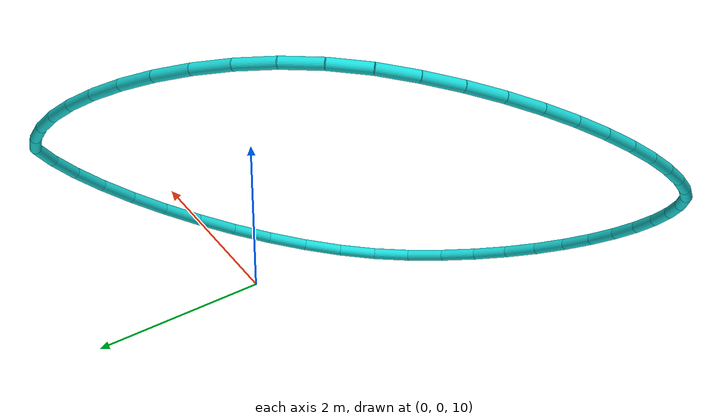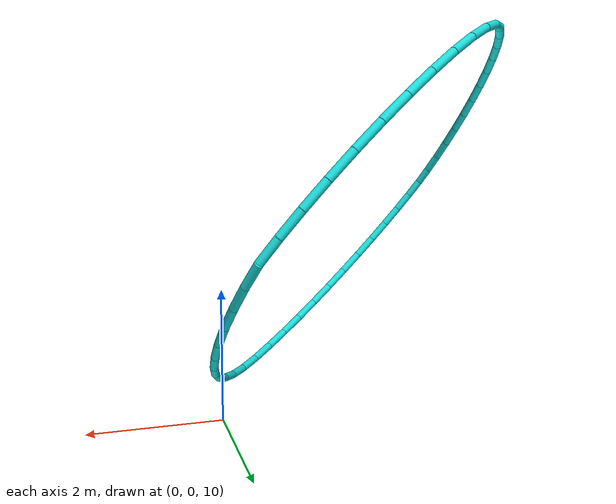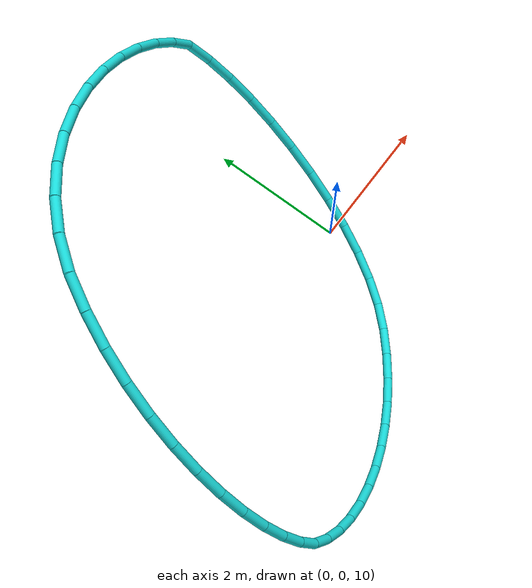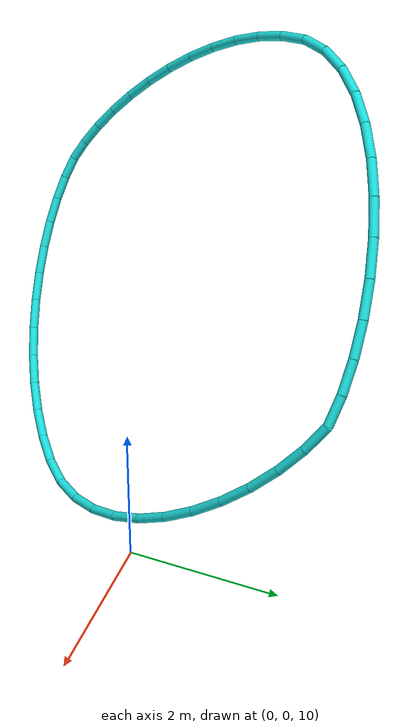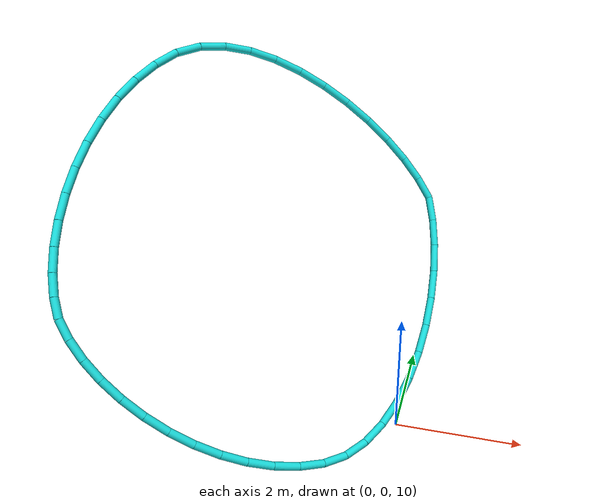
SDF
<sdf version="1.9">
 <world name="wide_scrambled_fast_closed_loop">
  <model name="ground">
   <static>true</static>
   <pose>0 0 -6 0 0 0</pose>
   <link name="link">
    <collision name="c"><geometry><plane><normal>0 0 1</normal><size>80 80</size></plane></geometry></collision>
    <visual name="v">
     <geometry><plane><normal>0 0 1</normal><size>80 80</size></plane></geometry>
     <material><diffuse>0.08 0.10 0.13 1</diffuse></material>
    </visual>
   </link>
  </model>
  <model name="gate_5_bezier_diamond">
   <static>true</static>
   <pose>-2.000000 0.000000 13.000000 0.000000 0.957660 -0.685730</pose>
   <link name="edge_0">
    <pose>0.148944 -3.331496 0 0 1.570796 0.123602</pose>
    <collision name="collision">
     <geometry><cylinder><radius>0.06</radius><length>0.300178</length></cylinder></geometry>
    </collision>
    <visual name="visual">
     <geometry><cylinder><radius>0.06</radius><length>0.300178</length></cylinder></geometry>
     <material><diffuse>0.10 0.85 0.85 1</diffuse><emissive>0.10 0.85 0.85 1</emissive></material>
    </visual>
   </link>
   <link name="edge_1">
    <pose>0.455078 -3.270964 0 0 1.570796 0.261261</pose>
    <collision name="collision">
     <geometry><cylinder><radius>0.06</radius><length>0.325424</length></cylinder></geometry>
    </collision>
    <visual name="visual">
     <geometry><cylinder><radius>0.06</radius><length>0.325424</length></cylinder></geometry>
     <material><diffuse>0.10 0.85 0.85 1</diffuse><emissive>0.10 0.85 0.85 1</emissive></material>
    </visual>
   </link>
   <link name="edge_2">
    <pose>0.774494 -3.164858 0 0 1.570796 0.376178</pose>
    <collision name="collision">
     <geometry><cylinder><radius>0.06</radius><length>0.348843</length></cylinder></geometry>
    </collision>
    <visual name="visual">
     <geometry><cylinder><radius>0.06</radius><length>0.348843</length></cylinder></geometry>
     <material><diffuse>0.10 0.85 0.85 1</diffuse><emissive>0.10 0.85 0.85 1</emissive></material>
    </visual>
   </link>
   <link name="edge_3">
    <pose>1.100767 -3.016131 0 0 1.570796 0.476371</pose>
    <collision name="collision">
     <geometry><cylinder><radius>0.06</radius><length>0.369201</length></cylinder></geometry>
    </collision>
    <visual name="visual">
     <geometry><cylinder><radius>0.06</radius><length>0.369201</length></cylinder></geometry>
     <material><diffuse>0.10 0.85 0.85 1</diffuse><emissive>0.10 0.85 0.85 1</emissive></material>
    </visual>
   </link>
   <link name="edge_4">
    <pose>1.427474 -2.827734 0 0 1.570796 0.567764</pose>
    <collision name="collision">
     <geometry><cylinder><radius>0.06</radius><length>0.385857</length></cylinder></geometry>
    </collision>
    <visual name="visual">
     <geometry><cylinder><radius>0.06</radius><length>0.385857</length></cylinder></geometry>
     <material><diffuse>0.10 0.85 0.85 1</diffuse><emissive>0.10 0.85 0.85 1</emissive></material>
    </visual>
   </link>
   <link name="edge_5">
    <pose>1.748192 -2.602619 0 0 1.570796 0.654841</pose>
    <collision name="collision">
     <geometry><cylinder><radius>0.06</radius><length>0.398562</length></cylinder></geometry>
    </collision>
    <visual name="visual">
     <geometry><cylinder><radius>0.06</radius><length>0.398562</length></cylinder></geometry>
     <material><diffuse>0.10 0.85 0.85 1</diffuse><emissive>0.10 0.85 0.85 1</emissive></material>
    </visual>
   </link>
   <link name="edge_6">
    <pose>2.056496 -2.343736 0 0 1.570796 0.741184</pose>
    <collision name="collision">
     <geometry><cylinder><radius>0.06</radius><length>0.407353</length></cylinder></geometry>
    </collision>
    <visual name="visual">
     <geometry><cylinder><radius>0.06</radius><length>0.407353</length></cylinder></geometry>
     <material><diffuse>0.10 0.85 0.85 1</diffuse><emissive>0.10 0.85 0.85 1</emissive></material>
    </visual>
   </link>
   <link name="edge_7">
    <pose>2.345964 -2.054036 0 0 1.570796 0.829853</pose>
    <collision name="collision">
     <geometry><cylinder><radius>0.06</radius><length>0.412518</length></cylinder></geometry>
    </collision>
    <visual name="visual">
     <geometry><cylinder><radius>0.06</radius><length>0.412518</length></cylinder></geometry>
     <material><diffuse>0.10 0.85 0.85 1</diffuse><emissive>0.10 0.85 0.85 1</emissive></material>
    </visual>
   </link>
   <link name="edge_8">
    <pose>2.610171 -1.736473 0 0 1.570796 0.923624</pose>
    <collision name="collision">
     <geometry><cylinder><radius>0.06</radius><length>0.414592</length></cylinder></geometry>
    </collision>
    <visual name="visual">
     <geometry><cylinder><radius>0.06</radius><length>0.414592</length></cylinder></geometry>
     <material><diffuse>0.10 0.85 0.85 1</diffuse><emissive>0.10 0.85 0.85 1</emissive></material>
    </visual>
   </link>
   <link name="edge_9">
    <pose>2.842694 -1.393996 0 0 1.570796 1.025084</pose>
    <collision name="collision">
     <geometry><cylinder><radius>0.06</radius><length>0.414381</length></cylinder></geometry>
    </collision>
    <visual name="visual">
     <geometry><cylinder><radius>0.06</radius><length>0.414381</length></cylinder></geometry>
     <material><diffuse>0.10 0.85 0.85 1</diffuse><emissive>0.10 0.85 0.85 1</emissive></material>
    </visual>
   </link>
   <link name="edge_10">
    <pose>3.037109 -1.029557 0 0 1.570796 1.136573</pose>
    <collision name="collision">
     <geometry><cylinder><radius>0.06</radius><length>0.413010</length></cylinder></geometry>
    </collision>
    <visual name="visual">
     <geometry><cylinder><radius>0.06</radius><length>0.413010</length></cylinder></geometry>
     <material><diffuse>0.10 0.85 0.85 1</diffuse><emissive>0.10 0.85 0.85 1</emissive></material>
    </visual>
   </link>
   <link name="edge_11">
    <pose>3.186994 -0.646108 0 0 1.570796 1.259929</pose>
    <collision name="collision">
     <geometry><cylinder><radius>0.06</radius><length>0.411962</length></cylinder></geometry>
    </collision>
    <visual name="visual">
     <geometry><cylinder><radius>0.06</radius><length>0.411962</length></cylinder></geometry>
     <material><diffuse>0.10 0.85 0.85 1</diffuse><emissive>0.10 0.85 0.85 1</emissive></material>
    </visual>
   </link>
   <link name="edge_12">
    <pose>3.274841 -0.253675 0 0 1.570796 1.444936</pose>
    <collision name="collision">
     <geometry><cylinder><radius>0.06</radius><length>0.395781</length></cylinder></geometry>
    </collision>
    <visual name="visual">
     <geometry><cylinder><radius>0.06</radius><length>0.395781</length></cylinder></geometry>
     <material><diffuse>0.10 0.85 0.85 1</diffuse><emissive>0.10 0.85 0.85 1</emissive></material>
    </visual>
   </link>
   <link name="edge_13">
    <pose>3.277734 0.141927 0 0 1.570796 1.680489</pose>
    <collision name="collision">
     <geometry><cylinder><radius>0.06</radius><length>0.400963</length></cylinder></geometry>
    </collision>
    <visual name="visual">
     <geometry><cylinder><radius>0.06</radius><length>0.400963</length></cylinder></geometry>
     <material><diffuse>0.10 0.85 0.85 1</diffuse><emissive>0.10 0.85 0.85 1</emissive></material>
    </visual>
   </link>
   <link name="edge_14">
    <pose>3.192347 0.540133 0 0 1.570796 1.879509</pose>
    <collision name="collision">
     <geometry><cylinder><radius>0.06</radius><length>0.417601</length></cylinder></geometry>
    </collision>
    <visual name="visual">
     <geometry><cylinder><radius>0.06</radius><length>0.417601</length></cylinder></geometry>
     <material><diffuse>0.10 0.85 0.85 1</diffuse><emissive>0.10 0.85 0.85 1</emissive></material>
    </visual>
   </link>
   <link name="edge_15">
    <pose>3.029268 0.934346 0 0 1.570796 2.042589</pose>
    <collision name="collision">
     <geometry><cylinder><radius>0.06</radius><length>0.438468</length></cylinder></geometry>
    </collision>
    <visual name="visual">
     <geometry><cylinder><radius>0.06</radius><length>0.438468</length></cylinder></geometry>
     <material><diffuse>0.10 0.85 0.85 1</diffuse><emissive>0.10 0.85 0.85 1</emissive></material>
    </visual>
   </link>
   <link name="edge_16">
    <pose>2.799089 1.317969 0 0 1.570796 2.176888</pose>
    <collision name="collision">
     <geometry><cylinder><radius>0.06</radius><length>0.458313</length></cylinder></geometry>
    </collision>
    <visual name="visual">
     <geometry><cylinder><radius>0.06</radius><length>0.458313</length></cylinder></geometry>
     <material><diffuse>0.10 0.85 0.85 1</diffuse><emissive>0.10 0.85 0.85 1</emissive></material>
    </visual>
   </link>
   <link name="edge_17">
    <pose>2.512399 1.684404 0 0 1.570796 2.290626</pose>
    <collision name="collision">
     <geometry><cylinder><radius>0.06</radius><length>0.473711</length></cylinder></geometry>
    </collision>
    <visual name="visual">
     <geometry><cylinder><radius>0.06</radius><length>0.473711</length></cylinder></geometry>
     <material><diffuse>0.10 0.85 0.85 1</diffuse><emissive>0.10 0.85 0.85 1</emissive></material>
    </visual>
   </link>
   <link name="edge_18">
    <pose>2.179789 2.027054 0 0 1.570796 2.391096</pose>
    <collision name="collision">
     <geometry><cylinder><radius>0.06</radius><length>0.482563</length></cylinder></geometry>
    </collision>
    <visual name="visual">
     <geometry><cylinder><radius>0.06</radius><length>0.482563</length></cylinder></geometry>
     <material><diffuse>0.10 0.85 0.85 1</diffuse><emissive>0.10 0.85 0.85 1</emissive></material>
    </visual>
   </link>
   <link name="edge_19">
    <pose>1.811849 2.339323 0 0 1.570796 2.484511</pose>
    <collision name="collision">
     <geometry><cylinder><radius>0.06</radius><length>0.483667</length></cylinder></geometry>
    </collision>
    <visual name="visual">
     <geometry><cylinder><radius>0.06</radius><length>0.483667</length></cylinder></geometry>
     <material><diffuse>0.10 0.85 0.85 1</diffuse><emissive>0.10 0.85 0.85 1</emissive></material>
    </visual>
   </link>
   <link name="edge_20">
    <pose>1.419170 2.614612 0 0 1.570796 2.576498</pose>
    <collision name="collision">
     <geometry><cylinder><radius>0.06</radius><length>0.476475</length></cylinder></geometry>
    </collision>
    <visual name="visual">
     <geometry><cylinder><radius>0.06</radius><length>0.476475</length></cylinder></geometry>
     <material><diffuse>0.10 0.85 0.85 1</diffuse><emissive>0.10 0.85 0.85 1</emissive></material>
    </visual>
   </link>
   <link name="edge_21">
    <pose>1.012341 2.846325 0 0 1.570796 2.672808</pose>
    <collision name="collision">
     <geometry><cylinder><radius>0.06</radius><length>0.460988</length></cylinder></geometry>
    </collision>
    <visual name="visual">
     <geometry><cylinder><radius>0.06</radius><length>0.460988</length></cylinder></geometry>
     <material><diffuse>0.10 0.85 0.85 1</diffuse><emissive>0.10 0.85 0.85 1</emissive></material>
    </visual>
   </link>
   <link name="edge_22">
    <pose>0.601953 3.027865 0 0 1.570796 2.780184</pose>
    <collision name="collision">
     <geometry><cylinder><radius>0.06</radius><length>0.437802</length></cylinder></geometry>
    </collision>
    <visual name="visual">
     <geometry><cylinder><radius>0.06</radius><length>0.437802</length></cylinder></geometry>
     <material><diffuse>0.10 0.85 0.85 1</diffuse><emissive>0.10 0.85 0.85 1</emissive></material>
    </visual>
   </link>
   <link name="edge_23">
    <pose>0.198597 3.152633 0 0 1.570796 2.907459</pose>
    <collision name="collision">
     <geometry><cylinder><radius>0.06</radius><length>0.408334</length></cylinder></geometry>
    </collision>
    <visual name="visual">
     <geometry><cylinder><radius>0.06</radius><length>0.408334</length></cylinder></geometry>
     <material><diffuse>0.10 0.85 0.85 1</diffuse><emissive>0.10 0.85 0.85 1</emissive></material>
    </visual>
   </link>
   <link name="edge_24">
    <pose>-0.187616 3.158840 0 0 1.570796 -2.925628</pose>
    <collision name="collision">
     <geometry><cylinder><radius>0.06</radius><length>0.384155</length></cylinder></geometry>
    </collision>
    <visual name="visual">
     <geometry><cylinder><radius>0.06</radius><length>0.384155</length></cylinder></geometry>
     <material><diffuse>0.10 0.85 0.85 1</diffuse><emissive>0.10 0.85 0.85 1</emissive></material>
    </visual>
   </link>
   <link name="edge_25">
    <pose>-0.571875 3.046224 0 0 1.570796 -2.793052</pose>
    <collision name="collision">
     <geometry><cylinder><radius>0.06</radius><length>0.418447</length></cylinder></geometry>
    </collision>
    <visual name="visual">
     <geometry><cylinder><radius>0.06</radius><length>0.418447</length></cylinder></geometry>
     <material><diffuse>0.10 0.85 0.85 1</diffuse><emissive>0.10 0.85 0.85 1</emissive></material>
    </visual>
   </link>
   <link name="edge_26">
    <pose>-0.968634 2.876056 0 0 1.570796 -2.683338</pose>
    <collision name="collision">
     <geometry><cylinder><radius>0.06</radius><length>0.446275</length></cylinder></geometry>
    </collision>
    <visual name="visual">
     <geometry><cylinder><radius>0.06</radius><length>0.446275</length></cylinder></geometry>
     <material><diffuse>0.10 0.85 0.85 1</diffuse><emissive>0.10 0.85 0.85 1</emissive></material>
    </visual>
   </link>
   <link name="edge_27">
    <pose>-1.366782 2.654413 0 0 1.570796 -2.586046</pose>
    <collision name="collision">
     <geometry><cylinder><radius>0.06</radius><length>0.466171</length></cylinder></geometry>
    </collision>
    <visual name="visual">
     <geometry><cylinder><radius>0.06</radius><length>0.466171</length></cylinder></geometry>
     <material><diffuse>0.10 0.85 0.85 1</diffuse><emissive>0.10 0.85 0.85 1</emissive></material>
    </visual>
   </link>
   <link name="edge_28">
    <pose>-1.755208 2.387370 0 0 1.570796 -2.493681</pose>
    <collision name="collision">
     <geometry><cylinder><radius>0.06</radius><length>0.477568</length></cylinder></geometry>
    </collision>
    <visual name="visual">
     <geometry><cylinder><radius>0.06</radius><length>0.477568</length></cylinder></geometry>
     <material><diffuse>0.10 0.85 0.85 1</diffuse><emissive>0.10 0.85 0.85 1</emissive></material>
    </visual>
   </link>
   <link name="edge_29">
    <pose>-2.122801 2.081004 0 0 1.570796 -2.400193</pose>
    <collision name="collision">
     <geometry><cylinder><radius>0.06</radius><length>0.480524</length></cylinder></geometry>
    </collision>
    <visual name="visual">
     <geometry><cylinder><radius>0.06</radius><length>0.480524</length></cylinder></geometry>
     <material><diffuse>0.10 0.85 0.85 1</diffuse><emissive>0.10 0.85 0.85 1</emissive></material>
    </visual>
   </link>
   <link name="edge_30">
    <pose>-2.458449 1.741392 0 0 1.570796 -2.299944</pose>
    <collision name="collision">
     <geometry><cylinder><radius>0.06</radius><length>0.475656</length></cylinder></geometry>
    </collision>
    <visual name="visual">
     <geometry><cylinder><radius>0.06</radius><length>0.475656</length></cylinder></geometry>
     <material><diffuse>0.10 0.85 0.85 1</diffuse><emissive>0.10 0.85 0.85 1</emissive></material>
    </visual>
   </link>
   <link name="edge_31">
    <pose>-2.751042 1.374609 0 0 1.570796 -2.186981</pose>
    <collision name="collision">
     <geometry><cylinder><radius>0.06</radius><length>0.464224</length></cylinder></geometry>
    </collision>
    <visual name="visual">
     <geometry><cylinder><radius>0.06</radius><length>0.464224</length></cylinder></geometry>
     <material><diffuse>0.10 0.85 0.85 1</diffuse><emissive>0.10 0.85 0.85 1</emissive></material>
    </visual>
   </link>
   <link name="edge_32">
    <pose>-2.989468 0.986733 0 0 1.570796 -2.054619</pose>
    <collision name="collision">
     <geometry><cylinder><radius>0.06</radius><length>0.448366</length></cylinder></geometry>
    </collision>
    <visual name="visual">
     <geometry><cylinder><radius>0.06</radius><length>0.448366</length></cylinder></geometry>
     <material><diffuse>0.10 0.85 0.85 1</diffuse><emissive>0.10 0.85 0.85 1</emissive></material>
    </visual>
   </link>
   <link name="edge_33">
    <pose>-3.162616 0.583840 0 0 1.570796 -1.895707</pose>
    <collision name="collision">
     <geometry><cylinder><radius>0.06</radius><length>0.431457</length></cylinder></geometry>
    </collision>
    <visual name="visual">
     <geometry><cylinder><radius>0.06</radius><length>0.431457</length></cylinder></geometry>
     <material><diffuse>0.10 0.85 0.85 1</diffuse><emissive>0.10 0.85 0.85 1</emissive></material>
    </visual>
   </link>
   <link name="edge_34">
    <pose>-3.259375 0.172005 0 0 1.570796 -1.704490</pose>
    <collision name="collision">
     <geometry><cylinder><radius>0.06</radius><length>0.418521</length></cylinder></geometry>
    </collision>
    <visual name="visual">
     <geometry><cylinder><radius>0.06</radius><length>0.418521</length></cylinder></geometry>
     <material><diffuse>0.10 0.85 0.85 1</diffuse><emissive>0.10 0.85 0.85 1</emissive></material>
    </visual>
   </link>
   <link name="edge_35">
    <pose>-3.268634 -0.242694 0 0 1.570796 -1.481150</pose>
    <collision name="collision">
     <geometry><cylinder><radius>0.06</radius><length>0.416284</length></cylinder></geometry>
    </collision>
    <visual name="visual">
     <geometry><cylinder><radius>0.06</radius><length>0.416284</length></cylinder></geometry>
     <material><diffuse>0.10 0.85 0.85 1</diffuse><emissive>0.10 0.85 0.85 1</emissive></material>
    </visual>
   </link>
   <link name="edge_36">
    <pose>-3.186516 -0.646108 0 0 1.570796 -1.257724</pose>
    <collision name="collision">
     <geometry><cylinder><radius>0.06</radius><length>0.412255</length></cylinder></geometry>
    </collision>
    <visual name="visual">
     <geometry><cylinder><radius>0.06</radius><length>0.412255</length></cylinder></geometry>
     <material><diffuse>0.10 0.85 0.85 1</diffuse><emissive>0.10 0.85 0.85 1</emissive></material>
    </visual>
   </link>
   <link name="edge_37">
    <pose>-3.034896 -1.029557 0 0 1.570796 -1.131058</pose>
    <collision name="collision">
     <geometry><cylinder><radius>0.06</radius><length>0.414076</length></cylinder></geometry>
    </collision>
    <visual name="visual">
     <geometry><cylinder><radius>0.06</radius><length>0.414076</length></cylinder></geometry>
     <material><diffuse>0.10 0.85 0.85 1</diffuse><emissive>0.10 0.85 0.85 1</emissive></material>
    </visual>
   </link>
   <link name="edge_38">
    <pose>-2.837442 -1.393996 0 0 1.570796 -1.017775</pose>
    <collision name="collision">
     <geometry><cylinder><radius>0.06</radius><length>0.416240</length></cylinder></geometry>
    </collision>
    <visual name="visual">
     <geometry><cylinder><radius>0.06</radius><length>0.416240</length></cylinder></geometry>
     <material><diffuse>0.10 0.85 0.85 1</diffuse><emissive>0.10 0.85 0.85 1</emissive></material>
    </visual>
   </link>
   <link name="edge_39">
    <pose>-2.601100 -1.736473 0 0 1.570796 -0.915820</pose>
    <collision name="collision">
     <geometry><cylinder><radius>0.06</radius><length>0.417064</length></cylinder></geometry>
    </collision>
    <visual name="visual">
     <geometry><cylinder><radius>0.06</radius><length>0.417064</length></cylinder></geometry>
     <material><diffuse>0.10 0.85 0.85 1</diffuse><emissive>0.10 0.85 0.85 1</emissive></material>
    </visual>
   </link>
   <link name="edge_40">
    <pose>-2.332813 -2.054036 0 0 1.570796 -0.822604</pose>
    <collision name="collision">
     <geometry><cylinder><radius>0.06</radius><length>0.415283</length></cylinder></geometry>
    </collision>
    <visual name="visual">
     <geometry><cylinder><radius>0.06</radius><length>0.415283</length></cylinder></geometry>
     <material><diffuse>0.10 0.85 0.85 1</diffuse><emissive>0.10 0.85 0.85 1</emissive></material>
    </visual>
   </link>
   <link name="edge_41">
    <pose>-2.039525 -2.343736 0 0 1.570796 -0.735323</pose>
    <collision name="collision">
     <geometry><cylinder><radius>0.06</radius><length>0.409985</length></cylinder></geometry>
    </collision>
    <visual name="visual">
     <geometry><cylinder><radius>0.06</radius><length>0.409985</length></cylinder></geometry>
     <material><diffuse>0.10 0.85 0.85 1</diffuse><emissive>0.10 0.85 0.85 1</emissive></material>
    </visual>
   </link>
   <link name="edge_42">
    <pose>-1.728183 -2.602619 0 0 1.570796 -0.651014</pose>
    <collision name="collision">
     <geometry><cylinder><radius>0.06</radius><length>0.400561</length></cylinder></geometry>
    </collision>
    <visual name="visual">
     <geometry><cylinder><radius>0.06</radius><length>0.400561</length></cylinder></geometry>
     <material><diffuse>0.10 0.85 0.85 1</diffuse><emissive>0.10 0.85 0.85 1</emissive></material>
    </visual>
   </link>
   <link name="edge_43">
    <pose>-1.405729 -2.827734 0 0 1.570796 -0.566437</pose>
    <collision name="collision">
     <geometry><cylinder><radius>0.06</radius><length>0.386663</length></cylinder></geometry>
    </collision>
    <visual name="visual">
     <geometry><cylinder><radius>0.06</radius><length>0.386663</length></cylinder></geometry>
     <material><diffuse>0.10 0.85 0.85 1</diffuse><emissive>0.10 0.85 0.85 1</emissive></material>
    </visual>
   </link>
   <link name="edge_44">
    <pose>-1.079109 -3.016131 0 0 1.570796 -0.477776</pose>
    <collision name="collision">
     <geometry><cylinder><radius>0.06</radius><length>0.368199</length></cylinder></geometry>
    </collision>
    <visual name="visual">
     <geometry><cylinder><radius>0.06</radius><length>0.368199</length></cylinder></geometry>
     <material><diffuse>0.10 0.85 0.85 1</diffuse><emissive>0.10 0.85 0.85 1</emissive></material>
    </visual>
   </link>
   <link name="edge_45">
    <pose>-0.755266 -3.164858 0 0 1.570796 -0.380149</pose>
    <collision name="collision">
     <geometry><cylinder><radius>0.06</radius><length>0.345374</length></cylinder></geometry>
    </collision>
    <visual name="visual">
     <geometry><cylinder><radius>0.06</radius><length>0.345374</length></cylinder></geometry>
     <material><diffuse>0.10 0.85 0.85 1</diffuse><emissive>0.10 0.85 0.85 1</emissive></material>
    </visual>
   </link>
   <link name="edge_46">
    <pose>-0.441146 -3.270964 0 0 1.570796 -0.266817</pose>
    <collision name="collision">
     <geometry><cylinder><radius>0.06</radius><length>0.318804</length></cylinder></geometry>
    </collision>
    <visual name="visual">
     <geometry><cylinder><radius>0.06</radius><length>0.318804</length></cylinder></geometry>
     <material><diffuse>0.10 0.85 0.85 1</diffuse><emissive>0.10 0.85 0.85 1</emissive></material>
    </visual>
   </link>
   <link name="edge_47">
    <pose>-0.143692 -3.331496 0 0 1.570796 -0.128071</pose>
    <collision name="collision">
     <geometry><cylinder><radius>0.06</radius><length>0.289757</length></cylinder></geometry>
    </collision>
    <visual name="visual">
     <geometry><cylinder><radius>0.06</radius><length>0.289757</length></cylinder></geometry>
     <material><diffuse>0.10 0.85 0.85 1</diffuse><emissive>0.10 0.85 0.85 1</emissive></material>
    </visual>
   </link>
  </model>
 </world>
</sdf>
